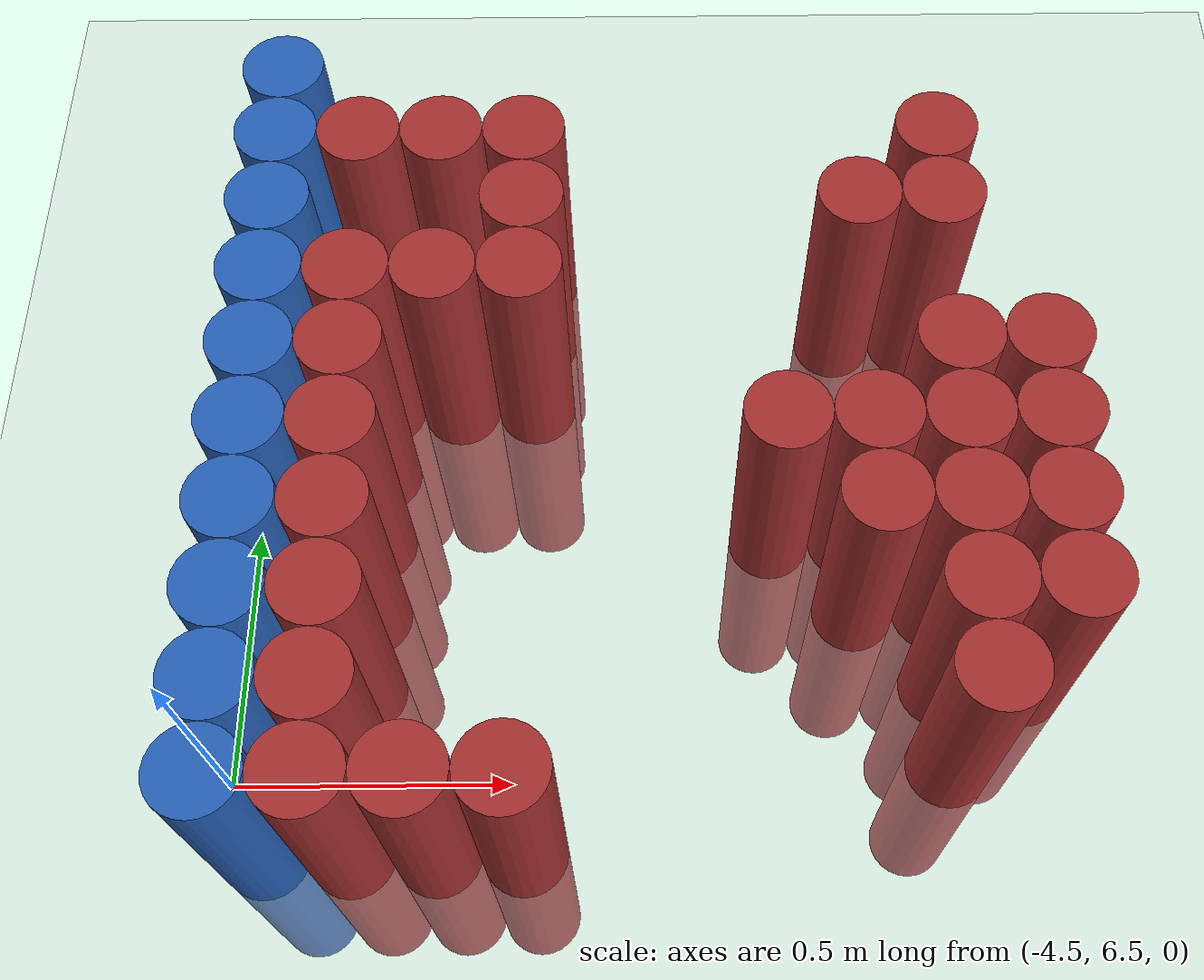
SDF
<sdf version="1.6">
 <world name="default">
  <model name="ground_plane">
   <static>1</static>
   <link name="link">
    <collision name="collision">
     <geometry><plane><normal>0 0 1</normal><size>100 100</size></plane></geometry>
     <surface><friction><ode><mu>100</mu><mu2>50</mu2></ode></friction></surface>
    </collision>
    <visual name="visual">
     <cast_shadows>0</cast_shadows>
     <geometry><plane><normal>0 0 1</normal><size>100 100</size></plane></geometry>
     <material>
      <script><uri>file://media/materials/scripts/gazebo.material</uri><name>Gazebo/Grey</name></script>
     </material>
    </visual>
   </link>
  </model>
  <model name="unit_cylinder_104">
   <static>1</static>
   <pose>-4.425000 6.375000 0.000000 0.000000 0.000000 0.000000</pose>
   <link name="link">
    <inertial>
     <mass>1</mass>
     <inertia><ixx>0.145833</ixx><ixy>0</ixy><ixz>0</ixz><iyy>0.145833</iyy><iyz>0</iyz><izz>0.125</izz></inertia>
    </inertial>
    <collision name="collision">
     <geometry><cylinder><radius>0.075000</radius><length>1</length></cylinder></geometry>
    </collision>
    <visual name="visual">
     <geometry><cylinder><radius>0.075000</radius><length>1</length></cylinder></geometry>
     <material>
      <ambient>0.152000 0.379000 0.720000 1</ambient>
      <diffuse>0.152000 0.379000 0.720000 1</diffuse>
     </material>
     <material>
      <script><name>Gazebo/Grey</name><uri>file://media/materials/scripts/gazebo.material</uri></script>
     </material>
    </visual>
    <sensor name="sensor_contact" type="contact"><contact><collision>collision</collision></contact></sensor>
   </link>
   <plugin filename="gz-sim-touchplugin-system" name="gz::sim::systems::TouchPlugin">
    <target>robot</target>
    <namespace>robot</namespace>
    <time>0.001</time>
    <enabled>true</enabled>
   </plugin>
  </model>
  <model name="unit_cylinder_105">
   <static>1</static>
   <pose>-4.425000 6.525000 0.000000 0.000000 0.000000 0.000000</pose>
   <link name="link">
    <inertial>
     <mass>1</mass>
     <inertia><ixx>0.145833</ixx><ixy>0</ixy><ixz>0</ixz><iyy>0.145833</iyy><iyz>0</iyz><izz>0.125</izz></inertia>
    </inertial>
    <collision name="collision">
     <geometry><cylinder><radius>0.075000</radius><length>1</length></cylinder></geometry>
    </collision>
    <visual name="visual">
     <geometry><cylinder><radius>0.075000</radius><length>1</length></cylinder></geometry>
     <material>
      <ambient>0.152000 0.379000 0.720000 1</ambient>
      <diffuse>0.152000 0.379000 0.720000 1</diffuse>
     </material>
     <material>
      <script><name>Gazebo/Grey</name><uri>file://media/materials/scripts/gazebo.material</uri></script>
     </material>
    </visual>
    <sensor name="sensor_contact" type="contact"><contact><collision>collision</collision></contact></sensor>
   </link>
   <plugin filename="gz-sim-touchplugin-system" name="gz::sim::systems::TouchPlugin">
    <target>robot</target>
    <namespace>robot</namespace>
    <time>0.001</time>
    <enabled>true</enabled>
   </plugin>
  </model>
  <model name="unit_cylinder_106">
   <static>1</static>
   <pose>-4.425000 6.675000 0.000000 0.000000 0.000000 0.000000</pose>
   <link name="link">
    <inertial>
     <mass>1</mass>
     <inertia><ixx>0.145833</ixx><ixy>0</ixy><ixz>0</ixz><iyy>0.145833</iyy><iyz>0</iyz><izz>0.125</izz></inertia>
    </inertial>
    <collision name="collision">
     <geometry><cylinder><radius>0.075000</radius><length>1</length></cylinder></geometry>
    </collision>
    <visual name="visual">
     <geometry><cylinder><radius>0.075000</radius><length>1</length></cylinder></geometry>
     <material>
      <ambient>0.152000 0.379000 0.720000 1</ambient>
      <diffuse>0.152000 0.379000 0.720000 1</diffuse>
     </material>
     <material>
      <script><name>Gazebo/Grey</name><uri>file://media/materials/scripts/gazebo.material</uri></script>
     </material>
    </visual>
    <sensor name="sensor_contact" type="contact"><contact><collision>collision</collision></contact></sensor>
   </link>
   <plugin filename="gz-sim-touchplugin-system" name="gz::sim::systems::TouchPlugin">
    <target>robot</target>
    <namespace>robot</namespace>
    <time>0.001</time>
    <enabled>true</enabled>
   </plugin>
  </model>
  <model name="unit_cylinder_107">
   <static>1</static>
   <pose>-4.425000 6.825000 0.000000 0.000000 0.000000 0.000000</pose>
   <link name="link">
    <inertial>
     <mass>1</mass>
     <inertia><ixx>0.145833</ixx><ixy>0</ixy><ixz>0</ixz><iyy>0.145833</iyy><iyz>0</iyz><izz>0.125</izz></inertia>
    </inertial>
    <collision name="collision">
     <geometry><cylinder><radius>0.075000</radius><length>1</length></cylinder></geometry>
    </collision>
    <visual name="visual">
     <geometry><cylinder><radius>0.075000</radius><length>1</length></cylinder></geometry>
     <material>
      <ambient>0.152000 0.379000 0.720000 1</ambient>
      <diffuse>0.152000 0.379000 0.720000 1</diffuse>
     </material>
     <material>
      <script><name>Gazebo/Grey</name><uri>file://media/materials/scripts/gazebo.material</uri></script>
     </material>
    </visual>
    <sensor name="sensor_contact" type="contact"><contact><collision>collision</collision></contact></sensor>
   </link>
   <plugin filename="gz-sim-touchplugin-system" name="gz::sim::systems::TouchPlugin">
    <target>robot</target>
    <namespace>robot</namespace>
    <time>0.001</time>
    <enabled>true</enabled>
   </plugin>
  </model>
  <model name="unit_cylinder_108">
   <static>1</static>
   <pose>-4.425000 6.975000 0.000000 0.000000 0.000000 0.000000</pose>
   <link name="link">
    <inertial>
     <mass>1</mass>
     <inertia><ixx>0.145833</ixx><ixy>0</ixy><ixz>0</ixz><iyy>0.145833</iyy><iyz>0</iyz><izz>0.125</izz></inertia>
    </inertial>
    <collision name="collision">
     <geometry><cylinder><radius>0.075000</radius><length>1</length></cylinder></geometry>
    </collision>
    <visual name="visual">
     <geometry><cylinder><radius>0.075000</radius><length>1</length></cylinder></geometry>
     <material>
      <ambient>0.152000 0.379000 0.720000 1</ambient>
      <diffuse>0.152000 0.379000 0.720000 1</diffuse>
     </material>
     <material>
      <script><name>Gazebo/Grey</name><uri>file://media/materials/scripts/gazebo.material</uri></script>
     </material>
    </visual>
    <sensor name="sensor_contact" type="contact"><contact><collision>collision</collision></contact></sensor>
   </link>
   <plugin filename="gz-sim-touchplugin-system" name="gz::sim::systems::TouchPlugin">
    <target>robot</target>
    <namespace>robot</namespace>
    <time>0.001</time>
    <enabled>true</enabled>
   </plugin>
  </model>
  <model name="unit_cylinder_109">
   <static>1</static>
   <pose>-4.425000 7.125000 0.000000 0.000000 0.000000 0.000000</pose>
   <link name="link">
    <inertial>
     <mass>1</mass>
     <inertia><ixx>0.145833</ixx><ixy>0</ixy><ixz>0</ixz><iyy>0.145833</iyy><iyz>0</iyz><izz>0.125</izz></inertia>
    </inertial>
    <collision name="collision">
     <geometry><cylinder><radius>0.075000</radius><length>1</length></cylinder></geometry>
    </collision>
    <visual name="visual">
     <geometry><cylinder><radius>0.075000</radius><length>1</length></cylinder></geometry>
     <material>
      <ambient>0.152000 0.379000 0.720000 1</ambient>
      <diffuse>0.152000 0.379000 0.720000 1</diffuse>
     </material>
     <material>
      <script><name>Gazebo/Grey</name><uri>file://media/materials/scripts/gazebo.material</uri></script>
     </material>
    </visual>
    <sensor name="sensor_contact" type="contact"><contact><collision>collision</collision></contact></sensor>
   </link>
   <plugin filename="gz-sim-touchplugin-system" name="gz::sim::systems::TouchPlugin">
    <target>robot</target>
    <namespace>robot</namespace>
    <time>0.001</time>
    <enabled>true</enabled>
   </plugin>
  </model>
  <model name="unit_cylinder_110">
   <static>1</static>
   <pose>-4.425000 7.275000 0.000000 0.000000 0.000000 0.000000</pose>
   <link name="link">
    <inertial>
     <mass>1</mass>
     <inertia><ixx>0.145833</ixx><ixy>0</ixy><ixz>0</ixz><iyy>0.145833</iyy><iyz>0</iyz><izz>0.125</izz></inertia>
    </inertial>
    <collision name="collision">
     <geometry><cylinder><radius>0.075000</radius><length>1</length></cylinder></geometry>
    </collision>
    <visual name="visual">
     <geometry><cylinder><radius>0.075000</radius><length>1</length></cylinder></geometry>
     <material>
      <ambient>0.152000 0.379000 0.720000 1</ambient>
      <diffuse>0.152000 0.379000 0.720000 1</diffuse>
     </material>
     <material>
      <script><name>Gazebo/Grey</name><uri>file://media/materials/scripts/gazebo.material</uri></script>
     </material>
    </visual>
    <sensor name="sensor_contact" type="contact"><contact><collision>collision</collision></contact></sensor>
   </link>
   <plugin filename="gz-sim-touchplugin-system" name="gz::sim::systems::TouchPlugin">
    <target>robot</target>
    <namespace>robot</namespace>
    <time>0.001</time>
    <enabled>true</enabled>
   </plugin>
  </model>
  <model name="unit_cylinder_111">
   <static>1</static>
   <pose>-4.425000 7.425000 0.000000 0.000000 0.000000 0.000000</pose>
   <link name="link">
    <inertial>
     <mass>1</mass>
     <inertia><ixx>0.145833</ixx><ixy>0</ixy><ixz>0</ixz><iyy>0.145833</iyy><iyz>0</iyz><izz>0.125</izz></inertia>
    </inertial>
    <collision name="collision">
     <geometry><cylinder><radius>0.075000</radius><length>1</length></cylinder></geometry>
    </collision>
    <visual name="visual">
     <geometry><cylinder><radius>0.075000</radius><length>1</length></cylinder></geometry>
     <material>
      <ambient>0.152000 0.379000 0.720000 1</ambient>
      <diffuse>0.152000 0.379000 0.720000 1</diffuse>
     </material>
     <material>
      <script><name>Gazebo/Grey</name><uri>file://media/materials/scripts/gazebo.material</uri></script>
     </material>
    </visual>
    <sensor name="sensor_contact" type="contact"><contact><collision>collision</collision></contact></sensor>
   </link>
   <plugin filename="gz-sim-touchplugin-system" name="gz::sim::systems::TouchPlugin">
    <target>robot</target>
    <namespace>robot</namespace>
    <time>0.001</time>
    <enabled>true</enabled>
   </plugin>
  </model>
  <model name="unit_cylinder_112">
   <static>1</static>
   <pose>-4.425000 7.575000 0.000000 0.000000 0.000000 0.000000</pose>
   <link name="link">
    <inertial>
     <mass>1</mass>
     <inertia><ixx>0.145833</ixx><ixy>0</ixy><ixz>0</ixz><iyy>0.145833</iyy><iyz>0</iyz><izz>0.125</izz></inertia>
    </inertial>
    <collision name="collision">
     <geometry><cylinder><radius>0.075000</radius><length>1</length></cylinder></geometry>
    </collision>
    <visual name="visual">
     <geometry><cylinder><radius>0.075000</radius><length>1</length></cylinder></geometry>
     <material>
      <ambient>0.152000 0.379000 0.720000 1</ambient>
      <diffuse>0.152000 0.379000 0.720000 1</diffuse>
     </material>
     <material>
      <script><name>Gazebo/Grey</name><uri>file://media/materials/scripts/gazebo.material</uri></script>
     </material>
    </visual>
    <sensor name="sensor_contact" type="contact"><contact><collision>collision</collision></contact></sensor>
   </link>
   <plugin filename="gz-sim-touchplugin-system" name="gz::sim::systems::TouchPlugin">
    <target>robot</target>
    <namespace>robot</namespace>
    <time>0.001</time>
    <enabled>true</enabled>
   </plugin>
  </model>
  <model name="unit_cylinder_113">
   <static>1</static>
   <pose>-4.425000 7.725000 0.000000 0.000000 0.000000 0.000000</pose>
   <link name="link">
    <inertial>
     <mass>1</mass>
     <inertia><ixx>0.145833</ixx><ixy>0</ixy><ixz>0</ixz><iyy>0.145833</iyy><iyz>0</iyz><izz>0.125</izz></inertia>
    </inertial>
    <collision name="collision">
     <geometry><cylinder><radius>0.075000</radius><length>1</length></cylinder></geometry>
    </collision>
    <visual name="visual">
     <geometry><cylinder><radius>0.075000</radius><length>1</length></cylinder></geometry>
     <material>
      <ambient>0.152000 0.379000 0.720000 1</ambient>
      <diffuse>0.152000 0.379000 0.720000 1</diffuse>
     </material>
     <material>
      <script><name>Gazebo/Grey</name><uri>file://media/materials/scripts/gazebo.material</uri></script>
     </material>
    </visual>
    <sensor name="sensor_contact" type="contact"><contact><collision>collision</collision></contact></sensor>
   </link>
   <plugin filename="gz-sim-touchplugin-system" name="gz::sim::systems::TouchPlugin">
    <target>robot</target>
    <namespace>robot</namespace>
    <time>0.001</time>
    <enabled>true</enabled>
   </plugin>
  </model>
  <model name="unit_cylinder_130">
   <static>1</static>
   <pose>-4.275000 6.375000 0.000000 0.000000 0.000000 0.000000</pose>
   <link name="link">
    <inertial>
     <mass>1</mass>
     <inertia><ixx>0.145833</ixx><ixy>0</ixy><ixz>0</ixz><iyy>0.145833</iyy><iyz>0</iyz><izz>0.125</izz></inertia>
    </inertial>
    <collision name="collision">
     <geometry><cylinder><radius>0.075000</radius><length>1</length></cylinder></geometry>
    </collision>
    <visual name="visual">
     <geometry><cylinder><radius>0.075000</radius><length>1</length></cylinder></geometry>
     <material>
      <ambient>0.648000 0.192000 0.192000 1</ambient>
      <diffuse>0.648000 0.192000 0.192000 1</diffuse>
     </material>
     <material>
      <script><name>Gazebo/Grey</name><uri>file://media/materials/scripts/gazebo.material</uri></script>
     </material>
    </visual>
    <sensor name="sensor_contact" type="contact"><contact><collision>collision</collision></contact></sensor>
   </link>
   <plugin filename="gz-sim-touchplugin-system" name="gz::sim::systems::TouchPlugin">
    <target>robot</target>
    <namespace>robot</namespace>
    <time>0.001</time>
    <enabled>true</enabled>
   </plugin>
  </model>
  <model name="unit_cylinder_131">
   <static>1</static>
   <pose>-4.275000 6.525000 0.000000 0.000000 0.000000 0.000000</pose>
   <link name="link">
    <inertial>
     <mass>1</mass>
     <inertia><ixx>0.145833</ixx><ixy>0</ixy><ixz>0</ixz><iyy>0.145833</iyy><iyz>0</iyz><izz>0.125</izz></inertia>
    </inertial>
    <collision name="collision">
     <geometry><cylinder><radius>0.075000</radius><length>1</length></cylinder></geometry>
    </collision>
    <visual name="visual">
     <geometry><cylinder><radius>0.075000</radius><length>1</length></cylinder></geometry>
     <material>
      <ambient>0.648000 0.192000 0.192000 1</ambient>
      <diffuse>0.648000 0.192000 0.192000 1</diffuse>
     </material>
     <material>
      <script><name>Gazebo/Grey</name><uri>file://media/materials/scripts/gazebo.material</uri></script>
     </material>
    </visual>
    <sensor name="sensor_contact" type="contact"><contact><collision>collision</collision></contact></sensor>
   </link>
   <plugin filename="gz-sim-touchplugin-system" name="gz::sim::systems::TouchPlugin">
    <target>robot</target>
    <namespace>robot</namespace>
    <time>0.001</time>
    <enabled>true</enabled>
   </plugin>
  </model>
  <model name="unit_cylinder_132">
   <static>1</static>
   <pose>-4.275000 6.675000 0.000000 0.000000 0.000000 0.000000</pose>
   <link name="link">
    <inertial>
     <mass>1</mass>
     <inertia><ixx>0.145833</ixx><ixy>0</ixy><ixz>0</ixz><iyy>0.145833</iyy><iyz>0</iyz><izz>0.125</izz></inertia>
    </inertial>
    <collision name="collision">
     <geometry><cylinder><radius>0.075000</radius><length>1</length></cylinder></geometry>
    </collision>
    <visual name="visual">
     <geometry><cylinder><radius>0.075000</radius><length>1</length></cylinder></geometry>
     <material>
      <ambient>0.648000 0.192000 0.192000 1</ambient>
      <diffuse>0.648000 0.192000 0.192000 1</diffuse>
     </material>
     <material>
      <script><name>Gazebo/Grey</name><uri>file://media/materials/scripts/gazebo.material</uri></script>
     </material>
    </visual>
    <sensor name="sensor_contact" type="contact"><contact><collision>collision</collision></contact></sensor>
   </link>
   <plugin filename="gz-sim-touchplugin-system" name="gz::sim::systems::TouchPlugin">
    <target>robot</target>
    <namespace>robot</namespace>
    <time>0.001</time>
    <enabled>true</enabled>
   </plugin>
  </model>
  <model name="unit_cylinder_133">
   <static>1</static>
   <pose>-4.275000 6.825000 0.000000 0.000000 0.000000 0.000000</pose>
   <link name="link">
    <inertial>
     <mass>1</mass>
     <inertia><ixx>0.145833</ixx><ixy>0</ixy><ixz>0</ixz><iyy>0.145833</iyy><iyz>0</iyz><izz>0.125</izz></inertia>
    </inertial>
    <collision name="collision">
     <geometry><cylinder><radius>0.075000</radius><length>1</length></cylinder></geometry>
    </collision>
    <visual name="visual">
     <geometry><cylinder><radius>0.075000</radius><length>1</length></cylinder></geometry>
     <material>
      <ambient>0.648000 0.192000 0.192000 1</ambient>
      <diffuse>0.648000 0.192000 0.192000 1</diffuse>
     </material>
     <material>
      <script><name>Gazebo/Grey</name><uri>file://media/materials/scripts/gazebo.material</uri></script>
     </material>
    </visual>
    <sensor name="sensor_contact" type="contact"><contact><collision>collision</collision></contact></sensor>
   </link>
   <plugin filename="gz-sim-touchplugin-system" name="gz::sim::systems::TouchPlugin">
    <target>robot</target>
    <namespace>robot</namespace>
    <time>0.001</time>
    <enabled>true</enabled>
   </plugin>
  </model>
  <model name="unit_cylinder_134">
   <static>1</static>
   <pose>-4.275000 6.975000 0.000000 0.000000 0.000000 0.000000</pose>
   <link name="link">
    <inertial>
     <mass>1</mass>
     <inertia><ixx>0.145833</ixx><ixy>0</ixy><ixz>0</ixz><iyy>0.145833</iyy><iyz>0</iyz><izz>0.125</izz></inertia>
    </inertial>
    <collision name="collision">
     <geometry><cylinder><radius>0.075000</radius><length>1</length></cylinder></geometry>
    </collision>
    <visual name="visual">
     <geometry><cylinder><radius>0.075000</radius><length>1</length></cylinder></geometry>
     <material>
      <ambient>0.648000 0.192000 0.192000 1</ambient>
      <diffuse>0.648000 0.192000 0.192000 1</diffuse>
     </material>
     <material>
      <script><name>Gazebo/Grey</name><uri>file://media/materials/scripts/gazebo.material</uri></script>
     </material>
    </visual>
    <sensor name="sensor_contact" type="contact"><contact><collision>collision</collision></contact></sensor>
   </link>
   <plugin filename="gz-sim-touchplugin-system" name="gz::sim::systems::TouchPlugin">
    <target>robot</target>
    <namespace>robot</namespace>
    <time>0.001</time>
    <enabled>true</enabled>
   </plugin>
  </model>
  <model name="unit_cylinder_135">
   <static>1</static>
   <pose>-4.275000 7.125000 0.000000 0.000000 0.000000 0.000000</pose>
   <link name="link">
    <inertial>
     <mass>1</mass>
     <inertia><ixx>0.145833</ixx><ixy>0</ixy><ixz>0</ixz><iyy>0.145833</iyy><iyz>0</iyz><izz>0.125</izz></inertia>
    </inertial>
    <collision name="collision">
     <geometry><cylinder><radius>0.075000</radius><length>1</length></cylinder></geometry>
    </collision>
    <visual name="visual">
     <geometry><cylinder><radius>0.075000</radius><length>1</length></cylinder></geometry>
     <material>
      <ambient>0.648000 0.192000 0.192000 1</ambient>
      <diffuse>0.648000 0.192000 0.192000 1</diffuse>
     </material>
     <material>
      <script><name>Gazebo/Grey</name><uri>file://media/materials/scripts/gazebo.material</uri></script>
     </material>
    </visual>
    <sensor name="sensor_contact" type="contact"><contact><collision>collision</collision></contact></sensor>
   </link>
   <plugin filename="gz-sim-touchplugin-system" name="gz::sim::systems::TouchPlugin">
    <target>robot</target>
    <namespace>robot</namespace>
    <time>0.001</time>
    <enabled>true</enabled>
   </plugin>
  </model>
  <model name="unit_cylinder_136">
   <static>1</static>
   <pose>-4.275000 7.275000 0.000000 0.000000 0.000000 0.000000</pose>
   <link name="link">
    <inertial>
     <mass>1</mass>
     <inertia><ixx>0.145833</ixx><ixy>0</ixy><ixz>0</ixz><iyy>0.145833</iyy><iyz>0</iyz><izz>0.125</izz></inertia>
    </inertial>
    <collision name="collision">
     <geometry><cylinder><radius>0.075000</radius><length>1</length></cylinder></geometry>
    </collision>
    <visual name="visual">
     <geometry><cylinder><radius>0.075000</radius><length>1</length></cylinder></geometry>
     <material>
      <ambient>0.648000 0.192000 0.192000 1</ambient>
      <diffuse>0.648000 0.192000 0.192000 1</diffuse>
     </material>
     <material>
      <script><name>Gazebo/Grey</name><uri>file://media/materials/scripts/gazebo.material</uri></script>
     </material>
    </visual>
    <sensor name="sensor_contact" type="contact"><contact><collision>collision</collision></contact></sensor>
   </link>
   <plugin filename="gz-sim-touchplugin-system" name="gz::sim::systems::TouchPlugin">
    <target>robot</target>
    <namespace>robot</namespace>
    <time>0.001</time>
    <enabled>true</enabled>
   </plugin>
  </model>
  <model name="unit_cylinder_137">
   <static>1</static>
   <pose>-4.275000 7.575000 0.000000 0.000000 0.000000 0.000000</pose>
   <link name="link">
    <inertial>
     <mass>1</mass>
     <inertia><ixx>0.145833</ixx><ixy>0</ixy><ixz>0</ixz><iyy>0.145833</iyy><iyz>0</iyz><izz>0.125</izz></inertia>
    </inertial>
    <collision name="collision">
     <geometry><cylinder><radius>0.075000</radius><length>1</length></cylinder></geometry>
    </collision>
    <visual name="visual">
     <geometry><cylinder><radius>0.075000</radius><length>1</length></cylinder></geometry>
     <material>
      <ambient>0.648000 0.192000 0.192000 1</ambient>
      <diffuse>0.648000 0.192000 0.192000 1</diffuse>
     </material>
     <material>
      <script><name>Gazebo/Grey</name><uri>file://media/materials/scripts/gazebo.material</uri></script>
     </material>
    </visual>
    <sensor name="sensor_contact" type="contact"><contact><collision>collision</collision></contact></sensor>
   </link>
   <plugin filename="gz-sim-touchplugin-system" name="gz::sim::systems::TouchPlugin">
    <target>robot</target>
    <namespace>robot</namespace>
    <time>0.001</time>
    <enabled>true</enabled>
   </plugin>
  </model>
  <model name="unit_cylinder_149">
   <static>1</static>
   <pose>-4.125000 6.375000 0.000000 0.000000 0.000000 0.000000</pose>
   <link name="link">
    <inertial>
     <mass>1</mass>
     <inertia><ixx>0.145833</ixx><ixy>0</ixy><ixz>0</ixz><iyy>0.145833</iyy><iyz>0</iyz><izz>0.125</izz></inertia>
    </inertial>
    <collision name="collision">
     <geometry><cylinder><radius>0.075000</radius><length>1</length></cylinder></geometry>
    </collision>
    <visual name="visual">
     <geometry><cylinder><radius>0.075000</radius><length>1</length></cylinder></geometry>
     <material>
      <ambient>0.648000 0.192000 0.192000 1</ambient>
      <diffuse>0.648000 0.192000 0.192000 1</diffuse>
     </material>
     <material>
      <script><name>Gazebo/Grey</name><uri>file://media/materials/scripts/gazebo.material</uri></script>
     </material>
    </visual>
    <sensor name="sensor_contact" type="contact"><contact><collision>collision</collision></contact></sensor>
   </link>
   <plugin filename="gz-sim-touchplugin-system" name="gz::sim::systems::TouchPlugin">
    <target>robot</target>
    <namespace>robot</namespace>
    <time>0.001</time>
    <enabled>true</enabled>
   </plugin>
  </model>
  <model name="unit_cylinder_150">
   <static>1</static>
   <pose>-4.125000 7.275000 0.000000 0.000000 0.000000 0.000000</pose>
   <link name="link">
    <inertial>
     <mass>1</mass>
     <inertia><ixx>0.145833</ixx><ixy>0</ixy><ixz>0</ixz><iyy>0.145833</iyy><iyz>0</iyz><izz>0.125</izz></inertia>
    </inertial>
    <collision name="collision">
     <geometry><cylinder><radius>0.075000</radius><length>1</length></cylinder></geometry>
    </collision>
    <visual name="visual">
     <geometry><cylinder><radius>0.075000</radius><length>1</length></cylinder></geometry>
     <material>
      <ambient>0.648000 0.192000 0.192000 1</ambient>
      <diffuse>0.648000 0.192000 0.192000 1</diffuse>
     </material>
     <material>
      <script><name>Gazebo/Grey</name><uri>file://media/materials/scripts/gazebo.material</uri></script>
     </material>
    </visual>
    <sensor name="sensor_contact" type="contact"><contact><collision>collision</collision></contact></sensor>
   </link>
   <plugin filename="gz-sim-touchplugin-system" name="gz::sim::systems::TouchPlugin">
    <target>robot</target>
    <namespace>robot</namespace>
    <time>0.001</time>
    <enabled>true</enabled>
   </plugin>
  </model>
  <model name="unit_cylinder_151">
   <static>1</static>
   <pose>-4.125000 7.575000 0.000000 0.000000 0.000000 0.000000</pose>
   <link name="link">
    <inertial>
     <mass>1</mass>
     <inertia><ixx>0.145833</ixx><ixy>0</ixy><ixz>0</ixz><iyy>0.145833</iyy><iyz>0</iyz><izz>0.125</izz></inertia>
    </inertial>
    <collision name="collision">
     <geometry><cylinder><radius>0.075000</radius><length>1</length></cylinder></geometry>
    </collision>
    <visual name="visual">
     <geometry><cylinder><radius>0.075000</radius><length>1</length></cylinder></geometry>
     <material>
      <ambient>0.648000 0.192000 0.192000 1</ambient>
      <diffuse>0.648000 0.192000 0.192000 1</diffuse>
     </material>
     <material>
      <script><name>Gazebo/Grey</name><uri>file://media/materials/scripts/gazebo.material</uri></script>
     </material>
    </visual>
    <sensor name="sensor_contact" type="contact"><contact><collision>collision</collision></contact></sensor>
   </link>
   <plugin filename="gz-sim-touchplugin-system" name="gz::sim::systems::TouchPlugin">
    <target>robot</target>
    <namespace>robot</namespace>
    <time>0.001</time>
    <enabled>true</enabled>
   </plugin>
  </model>
  <model name="unit_cylinder_154">
   <static>1</static>
   <pose>-3.975000 6.375000 0.000000 0.000000 0.000000 0.000000</pose>
   <link name="link">
    <inertial>
     <mass>1</mass>
     <inertia><ixx>0.145833</ixx><ixy>0</ixy><ixz>0</ixz><iyy>0.145833</iyy><iyz>0</iyz><izz>0.125</izz></inertia>
    </inertial>
    <collision name="collision">
     <geometry><cylinder><radius>0.075000</radius><length>1</length></cylinder></geometry>
    </collision>
    <visual name="visual">
     <geometry><cylinder><radius>0.075000</radius><length>1</length></cylinder></geometry>
     <material>
      <ambient>0.648000 0.192000 0.192000 1</ambient>
      <diffuse>0.648000 0.192000 0.192000 1</diffuse>
     </material>
     <material>
      <script><name>Gazebo/Grey</name><uri>file://media/materials/scripts/gazebo.material</uri></script>
     </material>
    </visual>
    <sensor name="sensor_contact" type="contact"><contact><collision>collision</collision></contact></sensor>
   </link>
   <plugin filename="gz-sim-touchplugin-system" name="gz::sim::systems::TouchPlugin">
    <target>robot</target>
    <namespace>robot</namespace>
    <time>0.001</time>
    <enabled>true</enabled>
   </plugin>
  </model>
  <model name="unit_cylinder_155">
   <static>1</static>
   <pose>-3.975000 7.275000 0.000000 0.000000 0.000000 0.000000</pose>
   <link name="link">
    <inertial>
     <mass>1</mass>
     <inertia><ixx>0.145833</ixx><ixy>0</ixy><ixz>0</ixz><iyy>0.145833</iyy><iyz>0</iyz><izz>0.125</izz></inertia>
    </inertial>
    <collision name="collision">
     <geometry><cylinder><radius>0.075000</radius><length>1</length></cylinder></geometry>
    </collision>
    <visual name="visual">
     <geometry><cylinder><radius>0.075000</radius><length>1</length></cylinder></geometry>
     <material>
      <ambient>0.648000 0.192000 0.192000 1</ambient>
      <diffuse>0.648000 0.192000 0.192000 1</diffuse>
     </material>
     <material>
      <script><name>Gazebo/Grey</name><uri>file://media/materials/scripts/gazebo.material</uri></script>
     </material>
    </visual>
    <sensor name="sensor_contact" type="contact"><contact><collision>collision</collision></contact></sensor>
   </link>
   <plugin filename="gz-sim-touchplugin-system" name="gz::sim::systems::TouchPlugin">
    <target>robot</target>
    <namespace>robot</namespace>
    <time>0.001</time>
    <enabled>true</enabled>
   </plugin>
  </model>
  <model name="unit_cylinder_156">
   <static>1</static>
   <pose>-3.975000 7.425000 0.000000 0.000000 0.000000 0.000000</pose>
   <link name="link">
    <inertial>
     <mass>1</mass>
     <inertia><ixx>0.145833</ixx><ixy>0</ixy><ixz>0</ixz><iyy>0.145833</iyy><iyz>0</iyz><izz>0.125</izz></inertia>
    </inertial>
    <collision name="collision">
     <geometry><cylinder><radius>0.075000</radius><length>1</length></cylinder></geometry>
    </collision>
    <visual name="visual">
     <geometry><cylinder><radius>0.075000</radius><length>1</length></cylinder></geometry>
     <material>
      <ambient>0.648000 0.192000 0.192000 1</ambient>
      <diffuse>0.648000 0.192000 0.192000 1</diffuse>
     </material>
     <material>
      <script><name>Gazebo/Grey</name><uri>file://media/materials/scripts/gazebo.material</uri></script>
     </material>
    </visual>
    <sensor name="sensor_contact" type="contact"><contact><collision>collision</collision></contact></sensor>
   </link>
   <plugin filename="gz-sim-touchplugin-system" name="gz::sim::systems::TouchPlugin">
    <target>robot</target>
    <namespace>robot</namespace>
    <time>0.001</time>
    <enabled>true</enabled>
   </plugin>
  </model>
  <model name="unit_cylinder_157">
   <static>1</static>
   <pose>-3.975000 7.575000 0.000000 0.000000 0.000000 0.000000</pose>
   <link name="link">
    <inertial>
     <mass>1</mass>
     <inertia><ixx>0.145833</ixx><ixy>0</ixy><ixz>0</ixz><iyy>0.145833</iyy><iyz>0</iyz><izz>0.125</izz></inertia>
    </inertial>
    <collision name="collision">
     <geometry><cylinder><radius>0.075000</radius><length>1</length></cylinder></geometry>
    </collision>
    <visual name="visual">
     <geometry><cylinder><radius>0.075000</radius><length>1</length></cylinder></geometry>
     <material>
      <ambient>0.648000 0.192000 0.192000 1</ambient>
      <diffuse>0.648000 0.192000 0.192000 1</diffuse>
     </material>
     <material>
      <script><name>Gazebo/Grey</name><uri>file://media/materials/scripts/gazebo.material</uri></script>
     </material>
    </visual>
    <sensor name="sensor_contact" type="contact"><contact><collision>collision</collision></contact></sensor>
   </link>
   <plugin filename="gz-sim-touchplugin-system" name="gz::sim::systems::TouchPlugin">
    <target>robot</target>
    <namespace>robot</namespace>
    <time>0.001</time>
    <enabled>true</enabled>
   </plugin>
  </model>
  <model name="unit_cylinder_178">
   <static>1</static>
   <pose>-3.525000 6.975000 0.000000 0.000000 0.000000 0.000000</pose>
   <link name="link">
    <inertial>
     <mass>1</mass>
     <inertia><ixx>0.145833</ixx><ixy>0</ixy><ixz>0</ixz><iyy>0.145833</iyy><iyz>0</iyz><izz>0.125</izz></inertia>
    </inertial>
    <collision name="collision">
     <geometry><cylinder><radius>0.075000</radius><length>1</length></cylinder></geometry>
    </collision>
    <visual name="visual">
     <geometry><cylinder><radius>0.075000</radius><length>1</length></cylinder></geometry>
     <material>
      <ambient>0.648000 0.192000 0.192000 1</ambient>
      <diffuse>0.648000 0.192000 0.192000 1</diffuse>
     </material>
     <material>
      <script><name>Gazebo/Grey</name><uri>file://media/materials/scripts/gazebo.material</uri></script>
     </material>
    </visual>
    <sensor name="sensor_contact" type="contact"><contact><collision>collision</collision></contact></sensor>
   </link>
   <plugin filename="gz-sim-touchplugin-system" name="gz::sim::systems::TouchPlugin">
    <target>robot</target>
    <namespace>robot</namespace>
    <time>0.001</time>
    <enabled>true</enabled>
   </plugin>
  </model>
  <model name="unit_cylinder_181">
   <static>1</static>
   <pose>-3.375000 6.825000 0.000000 0.000000 0.000000 0.000000</pose>
   <link name="link">
    <inertial>
     <mass>1</mass>
     <inertia><ixx>0.145833</ixx><ixy>0</ixy><ixz>0</ixz><iyy>0.145833</iyy><iyz>0</iyz><izz>0.125</izz></inertia>
    </inertial>
    <collision name="collision">
     <geometry><cylinder><radius>0.075000</radius><length>1</length></cylinder></geometry>
    </collision>
    <visual name="visual">
     <geometry><cylinder><radius>0.075000</radius><length>1</length></cylinder></geometry>
     <material>
      <ambient>0.648000 0.192000 0.192000 1</ambient>
      <diffuse>0.648000 0.192000 0.192000 1</diffuse>
     </material>
     <material>
      <script><name>Gazebo/Grey</name><uri>file://media/materials/scripts/gazebo.material</uri></script>
     </material>
    </visual>
    <sensor name="sensor_contact" type="contact"><contact><collision>collision</collision></contact></sensor>
   </link>
   <plugin filename="gz-sim-touchplugin-system" name="gz::sim::systems::TouchPlugin">
    <target>robot</target>
    <namespace>robot</namespace>
    <time>0.001</time>
    <enabled>true</enabled>
   </plugin>
  </model>
  <model name="unit_cylinder_182">
   <static>1</static>
   <pose>-3.375000 6.975000 0.000000 0.000000 0.000000 0.000000</pose>
   <link name="link">
    <inertial>
     <mass>1</mass>
     <inertia><ixx>0.145833</ixx><ixy>0</ixy><ixz>0</ixz><iyy>0.145833</iyy><iyz>0</iyz><izz>0.125</izz></inertia>
    </inertial>
    <collision name="collision">
     <geometry><cylinder><radius>0.075000</radius><length>1</length></cylinder></geometry>
    </collision>
    <visual name="visual">
     <geometry><cylinder><radius>0.075000</radius><length>1</length></cylinder></geometry>
     <material>
      <ambient>0.648000 0.192000 0.192000 1</ambient>
      <diffuse>0.648000 0.192000 0.192000 1</diffuse>
     </material>
     <material>
      <script><name>Gazebo/Grey</name><uri>file://media/materials/scripts/gazebo.material</uri></script>
     </material>
    </visual>
    <sensor name="sensor_contact" type="contact"><contact><collision>collision</collision></contact></sensor>
   </link>
   <plugin filename="gz-sim-touchplugin-system" name="gz::sim::systems::TouchPlugin">
    <target>robot</target>
    <namespace>robot</namespace>
    <time>0.001</time>
    <enabled>true</enabled>
   </plugin>
  </model>
  <model name="unit_cylinder_183">
   <static>1</static>
   <pose>-3.375000 7.425000 0.000000 0.000000 0.000000 0.000000</pose>
   <link name="link">
    <inertial>
     <mass>1</mass>
     <inertia><ixx>0.145833</ixx><ixy>0</ixy><ixz>0</ixz><iyy>0.145833</iyy><iyz>0</iyz><izz>0.125</izz></inertia>
    </inertial>
    <collision name="collision">
     <geometry><cylinder><radius>0.075000</radius><length>1</length></cylinder></geometry>
    </collision>
    <visual name="visual">
     <geometry><cylinder><radius>0.075000</radius><length>1</length></cylinder></geometry>
     <material>
      <ambient>0.648000 0.192000 0.192000 1</ambient>
      <diffuse>0.648000 0.192000 0.192000 1</diffuse>
     </material>
     <material>
      <script><name>Gazebo/Grey</name><uri>file://media/materials/scripts/gazebo.material</uri></script>
     </material>
    </visual>
    <sensor name="sensor_contact" type="contact"><contact><collision>collision</collision></contact></sensor>
   </link>
   <plugin filename="gz-sim-touchplugin-system" name="gz::sim::systems::TouchPlugin">
    <target>robot</target>
    <namespace>robot</namespace>
    <time>0.001</time>
    <enabled>true</enabled>
   </plugin>
  </model>
  <model name="unit_cylinder_185">
   <static>1</static>
   <pose>-3.225000 6.525000 0.000000 0.000000 0.000000 0.000000</pose>
   <link name="link">
    <inertial>
     <mass>1</mass>
     <inertia><ixx>0.145833</ixx><ixy>0</ixy><ixz>0</ixz><iyy>0.145833</iyy><iyz>0</iyz><izz>0.125</izz></inertia>
    </inertial>
    <collision name="collision">
     <geometry><cylinder><radius>0.075000</radius><length>1</length></cylinder></geometry>
    </collision>
    <visual name="visual">
     <geometry><cylinder><radius>0.075000</radius><length>1</length></cylinder></geometry>
     <material>
      <ambient>0.648000 0.192000 0.192000 1</ambient>
      <diffuse>0.648000 0.192000 0.192000 1</diffuse>
     </material>
     <material>
      <script><name>Gazebo/Grey</name><uri>file://media/materials/scripts/gazebo.material</uri></script>
     </material>
    </visual>
    <sensor name="sensor_contact" type="contact"><contact><collision>collision</collision></contact></sensor>
   </link>
   <plugin filename="gz-sim-touchplugin-system" name="gz::sim::systems::TouchPlugin">
    <target>robot</target>
    <namespace>robot</namespace>
    <time>0.001</time>
    <enabled>true</enabled>
   </plugin>
  </model>
  <model name="unit_cylinder_186">
   <static>1</static>
   <pose>-3.225000 6.675000 0.000000 0.000000 0.000000 0.000000</pose>
   <link name="link">
    <inertial>
     <mass>1</mass>
     <inertia><ixx>0.145833</ixx><ixy>0</ixy><ixz>0</ixz><iyy>0.145833</iyy><iyz>0</iyz><izz>0.125</izz></inertia>
    </inertial>
    <collision name="collision">
     <geometry><cylinder><radius>0.075000</radius><length>1</length></cylinder></geometry>
    </collision>
    <visual name="visual">
     <geometry><cylinder><radius>0.075000</radius><length>1</length></cylinder></geometry>
     <material>
      <ambient>0.648000 0.192000 0.192000 1</ambient>
      <diffuse>0.648000 0.192000 0.192000 1</diffuse>
     </material>
     <material>
      <script><name>Gazebo/Grey</name><uri>file://media/materials/scripts/gazebo.material</uri></script>
     </material>
    </visual>
    <sensor name="sensor_contact" type="contact"><contact><collision>collision</collision></contact></sensor>
   </link>
   <plugin filename="gz-sim-touchplugin-system" name="gz::sim::systems::TouchPlugin">
    <target>robot</target>
    <namespace>robot</namespace>
    <time>0.001</time>
    <enabled>true</enabled>
   </plugin>
  </model>
  <model name="unit_cylinder_187">
   <static>1</static>
   <pose>-3.225000 6.825000 0.000000 0.000000 0.000000 0.000000</pose>
   <link name="link">
    <inertial>
     <mass>1</mass>
     <inertia><ixx>0.145833</ixx><ixy>0</ixy><ixz>0</ixz><iyy>0.145833</iyy><iyz>0</iyz><izz>0.125</izz></inertia>
    </inertial>
    <collision name="collision">
     <geometry><cylinder><radius>0.075000</radius><length>1</length></cylinder></geometry>
    </collision>
    <visual name="visual">
     <geometry><cylinder><radius>0.075000</radius><length>1</length></cylinder></geometry>
     <material>
      <ambient>0.648000 0.192000 0.192000 1</ambient>
      <diffuse>0.648000 0.192000 0.192000 1</diffuse>
     </material>
     <material>
      <script><name>Gazebo/Grey</name><uri>file://media/materials/scripts/gazebo.material</uri></script>
     </material>
    </visual>
    <sensor name="sensor_contact" type="contact"><contact><collision>collision</collision></contact></sensor>
   </link>
   <plugin filename="gz-sim-touchplugin-system" name="gz::sim::systems::TouchPlugin">
    <target>robot</target>
    <namespace>robot</namespace>
    <time>0.001</time>
    <enabled>true</enabled>
   </plugin>
  </model>
  <model name="unit_cylinder_188">
   <static>1</static>
   <pose>-3.225000 6.975000 0.000000 0.000000 0.000000 0.000000</pose>
   <link name="link">
    <inertial>
     <mass>1</mass>
     <inertia><ixx>0.145833</ixx><ixy>0</ixy><ixz>0</ixz><iyy>0.145833</iyy><iyz>0</iyz><izz>0.125</izz></inertia>
    </inertial>
    <collision name="collision">
     <geometry><cylinder><radius>0.075000</radius><length>1</length></cylinder></geometry>
    </collision>
    <visual name="visual">
     <geometry><cylinder><radius>0.075000</radius><length>1</length></cylinder></geometry>
     <material>
      <ambient>0.648000 0.192000 0.192000 1</ambient>
      <diffuse>0.648000 0.192000 0.192000 1</diffuse>
     </material>
     <material>
      <script><name>Gazebo/Grey</name><uri>file://media/materials/scripts/gazebo.material</uri></script>
     </material>
    </visual>
    <sensor name="sensor_contact" type="contact"><contact><collision>collision</collision></contact></sensor>
   </link>
   <plugin filename="gz-sim-touchplugin-system" name="gz::sim::systems::TouchPlugin">
    <target>robot</target>
    <namespace>robot</namespace>
    <time>0.001</time>
    <enabled>true</enabled>
   </plugin>
  </model>
  <model name="unit_cylinder_189">
   <static>1</static>
   <pose>-3.225000 7.125000 0.000000 0.000000 0.000000 0.000000</pose>
   <link name="link">
    <inertial>
     <mass>1</mass>
     <inertia><ixx>0.145833</ixx><ixy>0</ixy><ixz>0</ixz><iyy>0.145833</iyy><iyz>0</iyz><izz>0.125</izz></inertia>
    </inertial>
    <collision name="collision">
     <geometry><cylinder><radius>0.075000</radius><length>1</length></cylinder></geometry>
    </collision>
    <visual name="visual">
     <geometry><cylinder><radius>0.075000</radius><length>1</length></cylinder></geometry>
     <material>
      <ambient>0.648000 0.192000 0.192000 1</ambient>
      <diffuse>0.648000 0.192000 0.192000 1</diffuse>
     </material>
     <material>
      <script><name>Gazebo/Grey</name><uri>file://media/materials/scripts/gazebo.material</uri></script>
     </material>
    </visual>
    <sensor name="sensor_contact" type="contact"><contact><collision>collision</collision></contact></sensor>
   </link>
   <plugin filename="gz-sim-touchplugin-system" name="gz::sim::systems::TouchPlugin">
    <target>robot</target>
    <namespace>robot</namespace>
    <time>0.001</time>
    <enabled>true</enabled>
   </plugin>
  </model>
  <model name="unit_cylinder_190">
   <static>1</static>
   <pose>-3.225000 7.425000 0.000000 0.000000 0.000000 0.000000</pose>
   <link name="link">
    <inertial>
     <mass>1</mass>
     <inertia><ixx>0.145833</ixx><ixy>0</ixy><ixz>0</ixz><iyy>0.145833</iyy><iyz>0</iyz><izz>0.125</izz></inertia>
    </inertial>
    <collision name="collision">
     <geometry><cylinder><radius>0.075000</radius><length>1</length></cylinder></geometry>
    </collision>
    <visual name="visual">
     <geometry><cylinder><radius>0.075000</radius><length>1</length></cylinder></geometry>
     <material>
      <ambient>0.648000 0.192000 0.192000 1</ambient>
      <diffuse>0.648000 0.192000 0.192000 1</diffuse>
     </material>
     <material>
      <script><name>Gazebo/Grey</name><uri>file://media/materials/scripts/gazebo.material</uri></script>
     </material>
    </visual>
    <sensor name="sensor_contact" type="contact"><contact><collision>collision</collision></contact></sensor>
   </link>
   <plugin filename="gz-sim-touchplugin-system" name="gz::sim::systems::TouchPlugin">
    <target>robot</target>
    <namespace>robot</namespace>
    <time>0.001</time>
    <enabled>true</enabled>
   </plugin>
  </model>
  <model name="unit_cylinder_191">
   <static>1</static>
   <pose>-3.225000 7.575000 0.000000 0.000000 0.000000 0.000000</pose>
   <link name="link">
    <inertial>
     <mass>1</mass>
     <inertia><ixx>0.145833</ixx><ixy>0</ixy><ixz>0</ixz><iyy>0.145833</iyy><iyz>0</iyz><izz>0.125</izz></inertia>
    </inertial>
    <collision name="collision">
     <geometry><cylinder><radius>0.075000</radius><length>1</length></cylinder></geometry>
    </collision>
    <visual name="visual">
     <geometry><cylinder><radius>0.075000</radius><length>1</length></cylinder></geometry>
     <material>
      <ambient>0.648000 0.192000 0.192000 1</ambient>
      <diffuse>0.648000 0.192000 0.192000 1</diffuse>
     </material>
     <material>
      <script><name>Gazebo/Grey</name><uri>file://media/materials/scripts/gazebo.material</uri></script>
     </material>
    </visual>
    <sensor name="sensor_contact" type="contact"><contact><collision>collision</collision></contact></sensor>
   </link>
   <plugin filename="gz-sim-touchplugin-system" name="gz::sim::systems::TouchPlugin">
    <target>robot</target>
    <namespace>robot</namespace>
    <time>0.001</time>
    <enabled>true</enabled>
   </plugin>
  </model>
  <model name="unit_cylinder_196">
   <static>1</static>
   <pose>-3.075000 6.675000 0.000000 0.000000 0.000000 0.000000</pose>
   <link name="link">
    <inertial>
     <mass>1</mass>
     <inertia><ixx>0.145833</ixx><ixy>0</ixy><ixz>0</ixz><iyy>0.145833</iyy><iyz>0</iyz><izz>0.125</izz></inertia>
    </inertial>
    <collision name="collision">
     <geometry><cylinder><radius>0.075000</radius><length>1</length></cylinder></geometry>
    </collision>
    <visual name="visual">
     <geometry><cylinder><radius>0.075000</radius><length>1</length></cylinder></geometry>
     <material>
      <ambient>0.648000 0.192000 0.192000 1</ambient>
      <diffuse>0.648000 0.192000 0.192000 1</diffuse>
     </material>
     <material>
      <script><name>Gazebo/Grey</name><uri>file://media/materials/scripts/gazebo.material</uri></script>
     </material>
    </visual>
    <sensor name="sensor_contact" type="contact"><contact><collision>collision</collision></contact></sensor>
   </link>
   <plugin filename="gz-sim-touchplugin-system" name="gz::sim::systems::TouchPlugin">
    <target>robot</target>
    <namespace>robot</namespace>
    <time>0.001</time>
    <enabled>true</enabled>
   </plugin>
  </model>
  <model name="unit_cylinder_197">
   <static>1</static>
   <pose>-3.075000 6.825000 0.000000 0.000000 0.000000 0.000000</pose>
   <link name="link">
    <inertial>
     <mass>1</mass>
     <inertia><ixx>0.145833</ixx><ixy>0</ixy><ixz>0</ixz><iyy>0.145833</iyy><iyz>0</iyz><izz>0.125</izz></inertia>
    </inertial>
    <collision name="collision">
     <geometry><cylinder><radius>0.075000</radius><length>1</length></cylinder></geometry>
    </collision>
    <visual name="visual">
     <geometry><cylinder><radius>0.075000</radius><length>1</length></cylinder></geometry>
     <material>
      <ambient>0.648000 0.192000 0.192000 1</ambient>
      <diffuse>0.648000 0.192000 0.192000 1</diffuse>
     </material>
     <material>
      <script><name>Gazebo/Grey</name><uri>file://media/materials/scripts/gazebo.material</uri></script>
     </material>
    </visual>
    <sensor name="sensor_contact" type="contact"><contact><collision>collision</collision></contact></sensor>
   </link>
   <plugin filename="gz-sim-touchplugin-system" name="gz::sim::systems::TouchPlugin">
    <target>robot</target>
    <namespace>robot</namespace>
    <time>0.001</time>
    <enabled>true</enabled>
   </plugin>
  </model>
  <model name="unit_cylinder_198">
   <static>1</static>
   <pose>-3.075000 6.975000 0.000000 0.000000 0.000000 0.000000</pose>
   <link name="link">
    <inertial>
     <mass>1</mass>
     <inertia><ixx>0.145833</ixx><ixy>0</ixy><ixz>0</ixz><iyy>0.145833</iyy><iyz>0</iyz><izz>0.125</izz></inertia>
    </inertial>
    <collision name="collision">
     <geometry><cylinder><radius>0.075000</radius><length>1</length></cylinder></geometry>
    </collision>
    <visual name="visual">
     <geometry><cylinder><radius>0.075000</radius><length>1</length></cylinder></geometry>
     <material>
      <ambient>0.648000 0.192000 0.192000 1</ambient>
      <diffuse>0.648000 0.192000 0.192000 1</diffuse>
     </material>
     <material>
      <script><name>Gazebo/Grey</name><uri>file://media/materials/scripts/gazebo.material</uri></script>
     </material>
    </visual>
    <sensor name="sensor_contact" type="contact"><contact><collision>collision</collision></contact></sensor>
   </link>
   <plugin filename="gz-sim-touchplugin-system" name="gz::sim::systems::TouchPlugin">
    <target>robot</target>
    <namespace>robot</namespace>
    <time>0.001</time>
    <enabled>true</enabled>
   </plugin>
  </model>
  <model name="unit_cylinder_199">
   <static>1</static>
   <pose>-3.075000 7.125000 0.000000 0.000000 0.000000 0.000000</pose>
   <link name="link">
    <inertial>
     <mass>1</mass>
     <inertia><ixx>0.145833</ixx><ixy>0</ixy><ixz>0</ixz><iyy>0.145833</iyy><iyz>0</iyz><izz>0.125</izz></inertia>
    </inertial>
    <collision name="collision">
     <geometry><cylinder><radius>0.075000</radius><length>1</length></cylinder></geometry>
    </collision>
    <visual name="visual">
     <geometry><cylinder><radius>0.075000</radius><length>1</length></cylinder></geometry>
     <material>
      <ambient>0.648000 0.192000 0.192000 1</ambient>
      <diffuse>0.648000 0.192000 0.192000 1</diffuse>
     </material>
     <material>
      <script><name>Gazebo/Grey</name><uri>file://media/materials/scripts/gazebo.material</uri></script>
     </material>
    </visual>
    <sensor name="sensor_contact" type="contact"><contact><collision>collision</collision></contact></sensor>
   </link>
   <plugin filename="gz-sim-touchplugin-system" name="gz::sim::systems::TouchPlugin">
    <target>robot</target>
    <namespace>robot</namespace>
    <time>0.001</time>
    <enabled>true</enabled>
   </plugin>
  </model>
 </world>
</sdf>
